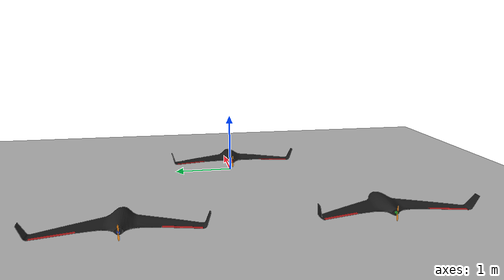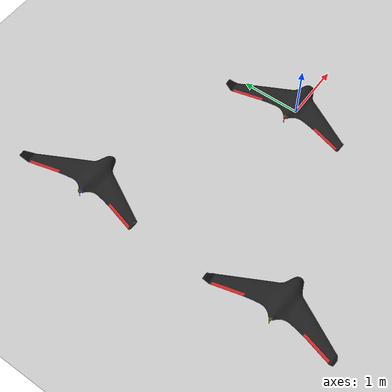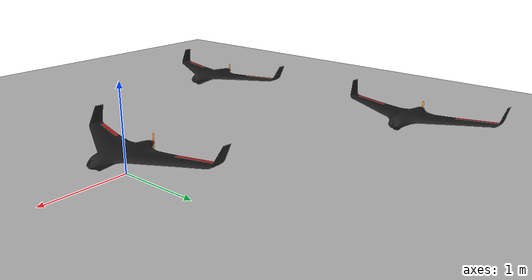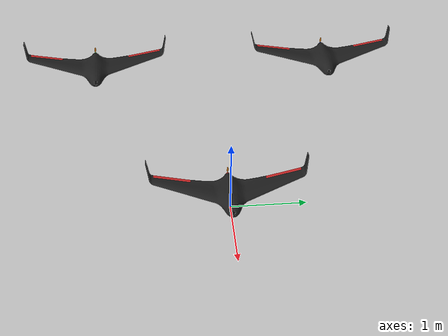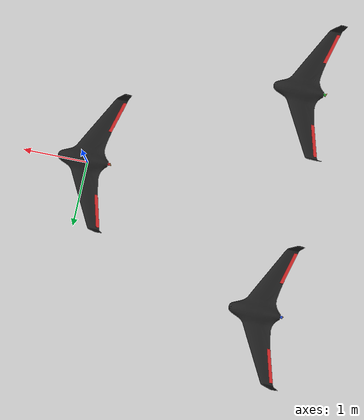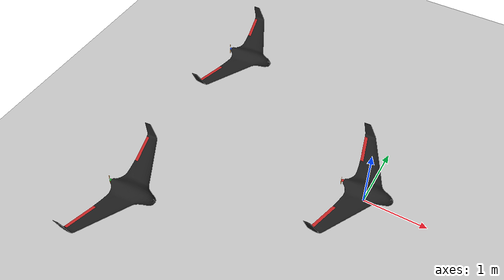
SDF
<?xml version="1.0"?>
<sdf version="1.5">
  <world name="default">
    <physics type="ode">
      <ode>
        <solver>
          <type>quick</type>
          <iters>100</iters>
          <sor>1.0</sor>
        </solver>
        <constraints>
          <cfm>0.0</cfm>
          <erp>0.9</erp>
          <contact_max_correcting_vel>0.1</contact_max_correcting_vel>
          <contact_surface_layer>0.0</contact_surface_layer>
        </constraints>
      </ode>
      <real_time_update_rate>1000</real_time_update_rate>
      <max_step_size>0.0010</max_step_size>
    </physics>

    <scene>
      <sky>
        <clouds>
          <speed>12</speed>
        </clouds>
      </sky>
      <ambient>0.4 0.4 0.4 1</ambient>
      <background>0.25 0.25 0.25 1</background>
    </scene>

    <model name="ground_plane">
      <static>true</static>
      <link name="link">
        <collision name="collision">
          <geometry>
            <plane>
              <normal>0 0 1</normal>
              <size>5000 5000</size>
            </plane>
          </geometry>
          <surface>
            <friction>
              <ode>
                <mu>1</mu>
                <mu2>1</mu2>
              </ode>
            </friction>
          </surface>
        </collision>
        <visual name="runway">
	<pose>000 0 0.005 0 0 0</pose>
          <cast_shadows>false</cast_shadows>
          <geometry>
            <plane>
              <normal>0 0 1</normal>
              <size>1829 45</size>
            </plane>
          </geometry>
          <material>
            <script>
              <uri>file://media/materials/scripts/gazebo.material</uri>
              <name>Gazebo/Runway</name>
            </script>
          </material>
        </visual>

        <visual name="grass">
          <pose>0 0 -0.1 0 0 0</pose>
          <cast_shadows>false</cast_shadows>
          <geometry>
            <plane>
              <normal>0 0 1</normal>
              <size>5000 5000</size>
            </plane>
          </geometry>
          <material>
            <script>
              <uri>file://media/materials/scripts/gazebo.material</uri>
              <name>Gazebo/Grass</name>
            </script>
          </material>
        </visual>

      </link>
    </model>

    <include>
      <uri>model://sun</uri>
    </include>

    <model name="SkywalkerX8_Red">
      <include>
        <uri>model://skywalker_x8_red</uri>
      </include>
    	<pose> 0 0 0 0 0 0</pose>
    </model>

    <model name="SkywalkerX8_Green">
      <include>
        <uri>model://skywalker_x8_green</uri>
      </include>
      <pose> -3 -1.732 0 0 0 0</pose>
    </model>

    <model name="SkywalkerX8_Blue">
      <include>
        <uri>model://skywalker_x8_blue</uri>
      </include>
      <pose> -3 1.732 0 0 0 0</pose>
    </model>

  </world>
</sdf>

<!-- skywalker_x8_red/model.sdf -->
<sdf version="1.6">
  <model name="skywalker_x8_red">
    <pose>0 0 0.246 0 0 0</pose>

<!-- Converter by Ahfaz IGNITION Model sdf 1.7 to this one  -->

<!--######## RED #############  -->

<!--######## Adding Camera #############  -->

    <link name="cam_link">
      <pose>0 0 0 0 0 0 </pose>
      <inertial>
        <mass>0.01</mass>
        <inertia>
          <ixx>0.0001</ixx>
          <iyy>0.0001</iyy>
          <izz>0.0001</izz>
        </inertia>
      </inertial>
      <sensor name="chase_cam_wide" type="camera">
        <pose>-10 0 12 -1.5708 1 0</pose>
        <camera>
          <horizontal_fov>1.5</horizontal_fov>
          <image>
            <width>1920</width>
            <height>1080</height>
          </image>
          <clip>
            <near>0.1</near>
            <far>1000</far>
          </clip>
        </camera>
        <always_on>1</always_on>
        <update_rate>60</update_rate>
        <visualize>false</visualize>
      </sensor>
    </link>

    <joint name="virtual_camera_mount" type="fixed">
      <child>cam_link</child>
      <parent>base_link</parent>
      <axis>
        <xyz>0 0 1</xyz>
        <limit>
          <upper>0</upper>
          <lower>0</lower>
        </limit>
      </axis>
    </joint>

<!--######## base link #############  -->
    <link name='base_link'>
      <pose>0 0 0 0 0 0</pose>
      <inertial>
        <pose>0 0 0 0 0 0</pose>
        <mass>4.5</mass>
        <inertia>
          <ixx>0.45</ixx>
          <ixy>0</ixy>
          <ixz>0.06</ixz>
          <iyy>0.325</iyy>
          <iyz>0</iyz>
          <izz>0.75</izz>
        </inertia>
      </inertial>
      <collision name='base_link_collision'>
        <pose>0 0 -0.07 0 0 0</pose>
        <geometry>
          <box>
            <size>0.50 0.5 0.2</size>
          </box>
        </geometry>
      </collision>
      <visual name='base_link_visual'>
        <geometry>
          <mesh>
            <uri>model://skywalker_x8/meshes/x8_wing.dae</uri>
          </mesh>
        </geometry>
        <material>
          <diffuse>1.0 0.0 0.0</diffuse>
          <specular>1.0 1.0 1.0</specular>
          <script>
            <name>Gazebo/Black</name>
            <uri>file://media/materials/scripts/gazebo.material</uri>
          </script>
        </material>
      </visual>
      <visual name='motor'>
        <pose>-0.361 0 0.0 0 1.57 0</pose>
        <geometry>
          <cylinder>
            <length>0.035</length>
            <radius>0.02</radius>
          </cylinder>
        </geometry>
        <material>
          <diffuse>1 1 1</diffuse>
          <specular>1 1 1</specular>
          <script>
            <name>Gazebo/Red</name>
            <uri>file://media/materials/scripts/gazebo.material</uri>
          </script>
        </material>
      </visual>
      <!-- save for debugging use -->
    </link>

<!--######## Rotor #############  -->
    <link name='rotor_pusher'>
      <pose>-0.385 0 0.0 0 1.57 0</pose>
      <inertial>
        <mass>0.025</mass>
        <inertia>
          <ixx>9.75e-06</ixx>
          <ixy>0</ixy>
          <ixz>0</ixz>
          <iyy>0.000166704</iyy>
          <iyz>0</iyz>
          <izz>0.000167604</izz>
        </inertia>
      </inertial>
      <collision name='collision'>
        <pose>0.0 0 0 0 0 0</pose>
        <geometry>
          <cylinder>
            <length>0.005</length>
            <radius>0.065</radius>
          </cylinder>
        </geometry>
      </collision>
      <visual name='visual'>
        <pose>0 0 0 0 0 0</pose>
        <geometry>
          <mesh>
            <scale>0.8 0.8 0.8</scale>
            <uri>model://skywalker_x8/meshes/iris_prop_ccw.dae</uri>
          </mesh>
        </geometry>
        <material>
          <diffuse>1.0 1.0 1.0</diffuse>
          <specular>1.0 1.0 1.0</specular>
          <script>
            <name>Gazebo/Orange</name>
            <uri>file://media/materials/scripts/gazebo.material</uri>
          </script>
        </material>
      </visual>
    </link>

    <joint name='rotor_pusher_joint' type='revolute'>
      <child>rotor_pusher</child>
      <parent>base_link</parent>
      <axis>
        <xyz>1 0 0</xyz>
        <limit>
          <lower>-1e+16</lower>
          <upper>1e+16</upper>
        </limit>
        <dynamics>
          <damping>0.002</damping>
        </dynamics>
        <use_parent_model_frame>1</use_parent_model_frame>
      </axis>
    </joint>

  <!--######## left_elevon #############  -->

    <link name="left_elevon">
      <inertial>
        <mass>0.1</mass>
        <inertia>
          <ixx>0.000102319</ixx>
          <ixy>0</ixy>
          <iyy>0.00334417</iyy>
          <ixz>0</ixz>
          <iyz>0</iyz>
          <izz>0.003446072</izz>
        </inertia>
        <pose>-0.30 0.75 -0.005 0 0 0</pose>
      </inertial>
      <visual name='left_elevon_visual'>
        <geometry>
          <mesh>
            <uri>model://skywalker_x8/meshes/x8_elevon_left.dae</uri>
          </mesh>
        </geometry>
        <material>
          <diffuse>1.0 1.0 1.0</diffuse>
          <specular>1.0 1.0 1.0</specular>
          <script>
            <name>Gazebo/Red</name>
            <uri>file://media/materials/scripts/gazebo.material</uri>
          </script>
        </material>
      </visual>
    </link>

        <!-- Joint range -30/+30 deg. -->
    <joint name='left_elevon_joint' type='revolute'>
      <parent>base_link</parent>
      <child>left_elevon</child>
      <pose>-0.27 0.6 -0.005 0 0 0.265</pose>
      <axis>
        <xyz>0 1 0</xyz>
        <limit>
          <lower>-0.53</lower>
          <upper>0.53</upper>
        </limit>
        <dynamics>
          <damping>0.1</damping>
        </dynamics>
      </axis>
    </joint>

 <!--######## right_elevon ###########  -->

    <link name="right_elevon">
      <inertial>
        <mass>0.1</mass>
        <inertia>
          <ixx>0.000102319</ixx>
          <ixy>0</ixy>
          <iyy>0.00334417</iyy>
          <ixz>0</ixz>
          <iyz>0</iyz>
          <izz>0.003446072</izz>
        </inertia>
        <pose>-0.30 -0.75 -0.005 0 0 0</pose>
      </inertial>
      <visual name='right_elevon_visual'>
        <geometry>
          <mesh>
            <uri>model://skywalker_x8/meshes/x8_elevon_right.dae</uri>
          </mesh>
        </geometry>
        <material>
          <diffuse>1.0 1.0 1.0</diffuse>
          <specular>1.0 1.0 1.0</specular>
          <script>
            <name>Gazebo/Red</name>
            <uri>file://media/materials/scripts/gazebo.material</uri>
          </script>
        </material>
      </visual>
    </link>

    <!-- Joint range -30/+30 deg. -->
    <joint name='right_elevon_joint' type='revolute'>
      <parent>base_link</parent>
      <child>right_elevon</child>
      <pose>-0.27 -0.6 -0.005 0 0 -0.265</pose>
      <axis>
        <xyz>0 1 0</xyz>
        <limit>
          <lower>-0.53</lower>
          <upper>0.53</upper>
        </limit>
        <dynamics>
          <damping>0.1</damping>
        </dynamics>
      </axis>
    </joint>

<!-- ############ IMU Sensors ###########-->

    <link name='imu_link'>
      <inertial>
        <pose>0 0 0 0 0 0</pose>
        <mass>0.15</mass>
        <inertia>
          <ixx>0.00001</ixx>
          <ixy>0</ixy>
          <ixz>0</ixz>
          <iyy>0.00002</iyy>
          <iyz>0</iyz>
          <izz>0.00002</izz>
        </inertia>
      </inertial>

      <sensor name="imu_sensor" type="imu">
        <pose>0 0 0 3.141593 0 0</pose>
        <always_on>1</always_on>
        <update_rate>1000.0</update_rate>
        <visualize>1</visualize>

        <!--  added from here-->
        <topic>__default_topic__</topic>

        <plugin name='imu_plugin' filename='libgazebo_ros_imu_sensor.so'>
          <topicName>imu</topicName>
          <bodyName>imu_link</bodyName>
          <updateRateHZ>10.0</updateRateHZ>
          <gaussianNoise>0.0</gaussianNoise>
          <xyzOffset>0 0 0</xyzOffset>
          <rpyOffset>0 0 0</rpyOffset>
          <frameName>imu_link</frameName>
          <initialOrientationAsReference>0</initialOrientationAsReference>
        </plugin>

        <!--  added to here -->

      </sensor>
    </link>

    <joint name='skywalker_x8/imu_joint' type='revolute'>
      <child>imu_link</child>
      <parent>base_link</parent>
      <axis>
        <xyz>0 0 1</xyz>
        <limit>
          <lower>0</lower>
          <upper>0</upper>
          <effort>0</effort>
          <velocity>0</velocity>
        </limit>
        <dynamics>
          <damping>1.0</damping>
        </dynamics>
        <use_parent_model_frame>1</use_parent_model_frame>
      </axis>
      <physics>
        <ode>
          <implicit_spring_damper>1</implicit_spring_damper>
        </ode>
      </physics>
    </joint>

<!-- ################## PLUGIN ###################### -->

     <!-- lift drag BODY -->

 <plugin name='x8_elevonleftbody_lift' filename='libLiftDragPlugin.so'>
      <a0>0.13</a0>
      <cla>3.7</cla>
      <cda>0.06417112299</cda>
      <cma>-1.8</cma>
      <alpha_stall>0.3391428111</alpha_stall>
      <cla_stall>-3.85</cla_stall>
      <cda_stall>-0.9233984055</cda_stall>
      <cma_stall>0</cma_stall>
      <cp>0.01 0 0</cp>
      <area>0.80</area>
      <air_density>1.2041</air_density>
      <forward>1 0 0</forward>
      <upward>0 0 1</upward>
      <link_name>base_link</link_name>
    </plugin>

         <!-- lift drag left elevon -->

    <plugin name='x8_elevonleft_lift' filename='libLiftDragPlugin.so'>

      <a0>0.15</a0>
      <cla>6.8</cla>
      <cda>0.06417112299</cda>
      <cma>-1.8</cma>
      <alpha_stall>0.6391428111</alpha_stall>
      <cla_stall>-3.85</cla_stall>
      <cda_stall>-0.9233984055</cda_stall>
      <cma_stall>0</cma_stall>
      <cp>-0.30 0.75 -0.005</cp>
      <area>0.10</area>
      <air_density>1.2041</air_density>
      <forward>1 0 0</forward>
      <upward>0 0 1</upward>
      <link_name>left_elevon</link_name>
    </plugin>

        <!-- lift drag right elevon -->

<plugin name='x8_elevonright_lift' filename='libLiftDragPlugin.so'>
      <a0>0.15</a0>
      <cla>6.8</cla>
      <cda>0.06417112299</cda>
      <cma>-1.8</cma>
      <alpha_stall>0.6391428111</alpha_stall>
      <cla_stall>-3.85</cla_stall>
      <cda_stall>-0.9233984055</cda_stall>
      <cma_stall>0</cma_stall>
      <cp>-0.30 -0.75 -0.005</cp>
      <area>0.10</area>
      <air_density>1.2041</air_density>
      <forward>1 0 0</forward>
      <upward>0 0 1</upward>
      <link_name>right_elevon</link_name>
    </plugin>

       <!-- lift drag  propeller1 -->

 <plugin name='x8_propeller1_lift' filename='libLiftDragPlugin.so'>
  <a0>0.30</a0>
      <alpha_stall>1.4</alpha_stall>
      <cla>4.2500</cla>
      <cda>0.10</cda>
      <cma>0.00</cma>
      <cla_stall>-0.025</cla_stall>
      <cda_stall>0.0</cda_stall>
      <cma_stall>0.0</cma_stall>
      <area>0.02</area>
      <air_density>1.2041</air_density>
      <cp>0.074205 0 0</cp>
      <forward>0 1 0</forward>
      <upward>0 0 1</upward>
      <link_name>rotor_pusher</link_name>
    </plugin>

       <!-- lift drag  propeller2 -->
 <plugin name='x8_propeller2_lift' filename='libLiftDragPlugin.so'>

      <a0>0.30</a0>
      <alpha_stall>1.4</alpha_stall>
      <cla>4.2500</cla>
      <cda>0.10</cda>
      <cma>0.00</cma>
      <cla_stall>-0.025</cla_stall>
      <cda_stall>0.0</cda_stall>
      <cma_stall>0.0</cma_stall>
      <area>0.02</area>
      <air_density>1.2041</air_density>
      <cp>-0.074205 0 0</cp>
      <forward>0 -1 0</forward>
      <upward>0 0 1</upward>
      <link_name>rotor_pusher</link_name>
    </plugin>

    <!-- left_winglet lift-drag -->

    <plugin name='left_winglet_lift' filename='libLiftDragPlugin.so'>
      <a0>0.0</a0>
      <cla>4.752798721</cla>
      <cda>0.6417112299</cda>
      <cma>-1.8</cma>
      <alpha_stall>0.3391428111</alpha_stall>
      <cla_stall>-3.85</cla_stall>
      <cda_stall>-0.9233984055</cda_stall>
      <cma_stall>0</cma_stall>
      <cp>-0.36 1.04 0.08</cp>
      <area>0.12</area>
      <air_density>1.2041</air_density>
      <forward>1 0 0</forward>
      <upward>0 1 0</upward>
      <link_name>base_link</link_name>
    </plugin>

    <!-- right_winglet lift-drag -->

    <plugin name='right_winglet_lift' filename='libLiftDragPlugin.so'>
      <a0>0.0</a0>
      <cla>4.752798721</cla>
      <cda>0.6417112299</cda>
      <cma>-1.8</cma>
      <alpha_stall>0.3391428111</alpha_stall>
      <cla_stall>-3.85</cla_stall>
      <cda_stall>-0.9233984055</cda_stall>
      <cma_stall>0</cma_stall>
      <cp>-0.36 -1.04 0.08</cp>
      <area>0.12</area>
      <air_density>1.2041</air_density>
      <forward>1 0 0</forward>
      <upward>0 -1 0</upward>
      <link_name>base_link</link_name>
    </plugin>

             <!-- ARDUPILOT PLUGIN -->

   <plugin name="ArduPilotPlugin" filename="libArduPilotPlugin.so">
      <!-- Port settings -->
      <fdm_addr>127.0.0.1</fdm_addr>
      <fdm_port_in>9002</fdm_port_in>
      <fdm_port_out>9003</fdm_port_out>

      <connectionTimeoutMaxCount>5</connectionTimeoutMaxCount>
      <lock_step>1</lock_step>

      <modelXYZToAirplaneXForwardZDown>0 0 0 3.141593 0 0</modelXYZToAirplaneXForwardZDown>
      <gazeboXYZToNED>0 0 0 3.141593 0 0</gazeboXYZToNED>

      <!-- Sensors -->
      <imuName>imu_sensor</imuName>

      <control channel="0">
        <jointName>left_elevon_joint</jointName>
        <multiplier>1.048</multiplier>
        <offset>-0.5</offset>
        <servo_min>1100</servo_min>
        <servo_max>1900</servo_max>
        <type>POSITION</type>
        <p_gain>10.0</p_gain>
        <i_gain>0</i_gain>
        <d_gain>0</d_gain>
        <i_max>0</i_max>
        <i_min>0</i_min>
        <cmd_max>2.5</cmd_max>
        <cmd_min>-2.5</cmd_min>
      </control>

      <!--
          SERVO2_FUNCTION   78 (Elevon Right)
          SERVO2_MAX        1900
          SERVO2_MIN        1100
          SERVO2_REVERSED   0
          SERVO2_TRIM       1500
       -->
      <control channel="1">
        <jointName>right_elevon_joint</jointName>
        <multiplier>1.048</multiplier>
        <offset>-0.5</offset>
        <servo_min>1100</servo_min>
        <servo_max>1900</servo_max>
        <type>POSITION</type>
        <p_gain>10.0</p_gain>
        <i_gain>0</i_gain>
        <d_gain>0</d_gain>
        <i_max>0</i_max>
        <i_min>0</i_min>
        <cmd_max>2.5</cmd_max>
        <cmd_min>-2.5</cmd_min>
      </control>

      <!--
          incoming control command [0, 1]
          so offset it by 0 to get [0, 1]
          and divide max target by 1.
          offset = 0
          multiplier = 838 max rpm / 1 = 838
        -->

      <!--
          SERVO3_FUNCTION   70 (Throttle)
          SERVO3_MAX        2000
          SERVO3_MIN        1000
          SERVO3_REVERSED   0
          SERVO3_TRIM       1000
       -->
      <control channel="2">
        <jointName>rotor_pusher_joint</jointName>
        <multiplier>838</multiplier>
        <offset>0</offset>
        <servo_min>1200</servo_min>
        <servo_max>2000</servo_max>
        <type>VELOCITY</type>
        <p_gain>0.20</p_gain>
        <i_gain>0</i_gain>
        <d_gain>0</d_gain>
        <i_max>0</i_max>
        <i_min>0</i_min>
        <cmd_max>2.5</cmd_max>
        <cmd_min>-2.5</cmd_min>
      </control>
    </plugin>

  </model>
</sdf>

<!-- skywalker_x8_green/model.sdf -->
<sdf version="1.6">
  <model name="skywalker_x8_green">
    <pose>0 0 0.246 0 0 0</pose>

<!-- Converter by Ahfaz IGNITION Model sdf 1.7 to this one  -->

<!--######## GREEN #############  -->

<!--######## Adding Camera #############  -->

    <link name="cam_link">
      <pose>0 0 0 0 0 0 </pose>
      <inertial>
        <mass>0.01</mass>
        <inertia>
          <ixx>0.0001</ixx>
          <iyy>0.0001</iyy>
          <izz>0.0001</izz>
        </inertia>
      </inertial>
      <sensor name="chase_cam_wide" type="camera">
        <pose>0 -4 4 0 0.6 1.4</pose>
        <camera>
          <horizontal_fov>1.5</horizontal_fov>
          <image>
            <width>1920</width>
            <height>1080</height>
          </image>
          <clip>
            <near>0.1</near>
            <far>1000</far>
          </clip>
        </camera>
        <always_on>1</always_on>
        <update_rate>60</update_rate>
        <visualize>false</visualize>
      </sensor>
    </link>

    <joint name="virtual_camera_mount" type="fixed">
      <child>cam_link</child>
      <parent>base_link</parent>
      <axis>
        <xyz>0 0 1</xyz>
        <limit>
          <upper>0</upper>
          <lower>0</lower>
        </limit>
      </axis>
    </joint>

<!--######## base link #############  -->
    <link name='base_link'>
      <pose>0 0 0 0 0 0</pose>
      <inertial>
        <pose>0 0 0 0 0 0</pose>
        <mass>4.5</mass>
        <inertia>
          <ixx>0.45</ixx>
          <ixy>0</ixy>
          <ixz>0.06</ixz>
          <iyy>0.325</iyy>
          <iyz>0</iyz>
          <izz>0.75</izz>
        </inertia>
      </inertial>
      <collision name='base_link_collision'>
        <pose>0 0 -0.07 0 0 0</pose>
        <geometry>
          <box>
            <size>0.50 0.5 0.2</size>
          </box>
        </geometry>
      </collision>
      <visual name='base_link_visual'>
        <geometry>
          <mesh>
            <uri>model://skywalker_x8/meshes/x8_wing.dae</uri>
          </mesh>
        </geometry>
        <material>
          <diffuse>0.0 1.0 1.0</diffuse>
          <specular>1.0 1.0 1.0</specular>
          <script>
            <name>Gazebo/Black</name>
            <uri>file://media/materials/scripts/gazebo.material</uri>
          </script>
        </material>
      </visual>
      <visual name='motor'>
        <pose>-0.361 0 0.0 0 1.57 0</pose>
        <geometry>
          <cylinder>
            <length>0.035</length>
            <radius>0.02</radius>
          </cylinder>
        </geometry>
        <material>
          <diffuse>1 1 1</diffuse>
          <specular>1 1 1</specular>
          <script>
            <name>Gazebo/Green</name>
            <uri>file://media/materials/scripts/gazebo.material</uri>
          </script>
        </material>
      </visual>
      <!-- save for debugging use -->
    </link>

<!--######## Rotor #############  -->
    <link name='rotor_pusher'>
      <pose>-0.385 0 0.0 0 1.57 0</pose>
      <inertial>
        <mass>0.025</mass>
        <inertia>
          <ixx>9.75e-06</ixx>
          <ixy>0</ixy>
          <ixz>0</ixz>
          <iyy>0.000166704</iyy>
          <iyz>0</iyz>
          <izz>0.000167604</izz>
        </inertia>
      </inertial>
      <collision name='collision'>
        <pose>0.0 0 0 0 0 0</pose>
        <geometry>
          <cylinder>
            <length>0.005</length>
            <radius>0.065</radius>
          </cylinder>
        </geometry>
      </collision>
      <visual name='visual'>
        <pose>0 0 0 0 0 0</pose>
        <geometry>
          <mesh>
            <scale>0.8 0.8 0.8</scale>
            <uri>model://skywalker_x8/meshes/iris_prop_ccw.dae</uri>
          </mesh>
        </geometry>
        <material>
          <diffuse>1.0 1.0 1.0</diffuse>
          <specular>1.0 1.0 1.0</specular>
          <script>
            <name>Gazebo/Orange</name>
            <uri>file://media/materials/scripts/gazebo.material</uri>
          </script>
        </material>
      </visual>
    </link>

    <joint name='rotor_pusher_joint' type='revolute'>
      <child>rotor_pusher</child>
      <parent>base_link</parent>
      <axis>
        <xyz>1 0 0</xyz>
        <limit>
          <lower>-1e+16</lower>
          <upper>1e+16</upper>
        </limit>
        <dynamics>
          <damping>0.002</damping>
        </dynamics>
        <use_parent_model_frame>1</use_parent_model_frame>
      </axis>
    </joint>

  <!--######## left_elevon #############  -->

    <link name="left_elevon">
      <inertial>
        <mass>0.1</mass>
        <inertia>
          <ixx>0.000102319</ixx>
          <ixy>0</ixy>
          <iyy>0.00334417</iyy>
          <ixz>0</ixz>
          <iyz>0</iyz>
          <izz>0.003446072</izz>
        </inertia>
        <pose>-0.30 0.75 -0.005 0 0 0</pose>
      </inertial>
      <visual name='left_elevon_visual'>
        <geometry>
          <mesh>
            <uri>model://skywalker_x8/meshes/x8_elevon_left.dae</uri>
          </mesh>
        </geometry>
        <material>
          <diffuse>1.0 1.0 1.0</diffuse>
          <specular>1.0 1.0 1.0</specular>
          <script>
            <name>Gazebo/Red</name>
            <uri>file://media/materials/scripts/gazebo.material</uri>
          </script>
        </material>
      </visual>
    </link>

        <!-- Joint range -30/+30 deg. -->
    <joint name='left_elevon_joint' type='revolute'>
      <parent>base_link</parent>
      <child>left_elevon</child>
      <pose>-0.27 0.6 -0.005 0 0 0.265</pose>
      <axis>
        <xyz>0 1 0</xyz>
        <limit>
          <lower>-0.53</lower>
          <upper>0.53</upper>
        </limit>
        <dynamics>
          <damping>0.1</damping>
        </dynamics>
      </axis>
    </joint>

 <!--######## right_elevon ###########  -->

    <link name="right_elevon">
      <inertial>
        <mass>0.1</mass>
        <inertia>
          <ixx>0.000102319</ixx>
          <ixy>0</ixy>
          <iyy>0.00334417</iyy>
          <ixz>0</ixz>
          <iyz>0</iyz>
          <izz>0.003446072</izz>
        </inertia>
        <pose>-0.30 -0.75 -0.005 0 0 0</pose>
      </inertial>
      <visual name='right_elevon_visual'>
        <geometry>
          <mesh>
            <uri>model://skywalker_x8/meshes/x8_elevon_right.dae</uri>
          </mesh>
        </geometry>
        <material>
          <diffuse>1.0 1.0 1.0</diffuse>
          <specular>1.0 1.0 1.0</specular>
          <script>
            <name>Gazebo/Red</name>
            <uri>file://media/materials/scripts/gazebo.material</uri>
          </script>
        </material>
      </visual>
    </link>

    <!-- Joint range -30/+30 deg. -->
    <joint name='right_elevon_joint' type='revolute'>
      <parent>base_link</parent>
      <child>right_elevon</child>
      <pose>-0.27 -0.6 -0.005 0 0 -0.265</pose>
      <axis>
        <xyz>0 1 0</xyz>
        <limit>
          <lower>-0.53</lower>
          <upper>0.53</upper>
        </limit>
        <dynamics>
          <damping>0.1</damping>
        </dynamics>
      </axis>
    </joint>

<!-- ############ IMU Sensors ###########-->

    <link name='imu_link'>
      <inertial>
        <pose>0 0 0 0 0 0</pose>
        <mass>0.15</mass>
        <inertia>
          <ixx>0.00001</ixx>
          <ixy>0</ixy>
          <ixz>0</ixz>
          <iyy>0.00002</iyy>
          <iyz>0</iyz>
          <izz>0.00002</izz>
        </inertia>
      </inertial>

      <sensor name="imu_sensor" type="imu">
        <pose>0 0 0 3.141593 0 0</pose>
        <always_on>1</always_on>
        <update_rate>1000.0</update_rate>
        <visualize>1</visualize>

        <!--  added from here-->
        <topic>__default_topic__</topic>

        <plugin name='imu_plugin' filename='libgazebo_ros_imu_sensor.so'>
          <topicName>imu</topicName>
          <bodyName>imu_link</bodyName>
          <updateRateHZ>10.0</updateRateHZ>
          <gaussianNoise>0.0</gaussianNoise>
          <xyzOffset>0 0 0</xyzOffset>
          <rpyOffset>0 0 0</rpyOffset>
          <frameName>imu_link</frameName>
          <initialOrientationAsReference>0</initialOrientationAsReference>
        </plugin>

        <!--  added to here -->

      </sensor>
    </link>

    <joint name='skywalker_x8/imu_joint' type='revolute'>
      <child>imu_link</child>
      <parent>base_link</parent>
      <axis>
        <xyz>0 0 1</xyz>
        <limit>
          <lower>0</lower>
          <upper>0</upper>
          <effort>0</effort>
          <velocity>0</velocity>
        </limit>
        <dynamics>
          <damping>1.0</damping>
        </dynamics>
        <use_parent_model_frame>1</use_parent_model_frame>
      </axis>
      <physics>
        <ode>
          <implicit_spring_damper>1</implicit_spring_damper>
        </ode>
      </physics>
    </joint>

<!-- ################## PLUGIN ###################### -->

     <!-- lift drag BODY -->

 <plugin name='x8_elevonleftbody_lift' filename='libLiftDragPlugin.so'>
      <a0>0.13</a0>
      <cla>3.7</cla>
      <cda>0.06417112299</cda>
      <cma>-1.8</cma>
      <alpha_stall>0.3391428111</alpha_stall>
      <cla_stall>-3.85</cla_stall>
      <cda_stall>-0.9233984055</cda_stall>
      <cma_stall>0</cma_stall>
      <cp>0.01 0 0</cp>
      <area>0.80</area>
      <air_density>1.2041</air_density>
      <forward>1 0 0</forward>
      <upward>0 0 1</upward>
      <link_name>base_link</link_name>
    </plugin>

         <!-- lift drag left elevon -->

    <plugin name='x8_elevonleft_lift' filename='libLiftDragPlugin.so'>

      <a0>0.15</a0>
      <cla>6.8</cla>
      <cda>0.06417112299</cda>
      <cma>-1.8</cma>
      <alpha_stall>0.6391428111</alpha_stall>
      <cla_stall>-3.85</cla_stall>
      <cda_stall>-0.9233984055</cda_stall>
      <cma_stall>0</cma_stall>
      <cp>-0.30 0.75 -0.005</cp>
      <area>0.10</area>
      <air_density>1.2041</air_density>
      <forward>1 0 0</forward>
      <upward>0 0 1</upward>
      <link_name>left_elevon</link_name>
    </plugin>

        <!-- lift drag right elevon -->

<plugin name='x8_elevonright_lift' filename='libLiftDragPlugin.so'>
      <a0>0.15</a0>
      <cla>6.8</cla>
      <cda>0.06417112299</cda>
      <cma>-1.8</cma>
      <alpha_stall>0.6391428111</alpha_stall>
      <cla_stall>-3.85</cla_stall>
      <cda_stall>-0.9233984055</cda_stall>
      <cma_stall>0</cma_stall>
      <cp>-0.30 -0.75 -0.005</cp>
      <area>0.10</area>
      <air_density>1.2041</air_density>
      <forward>1 0 0</forward>
      <upward>0 0 1</upward>
      <link_name>right_elevon</link_name>
    </plugin>

       <!-- lift drag  propeller1 -->

 <plugin name='x8_propeller1_lift' filename='libLiftDragPlugin.so'>
  <a0>0.30</a0>
      <alpha_stall>1.4</alpha_stall>
      <cla>4.2500</cla>
      <cda>0.10</cda>
      <cma>0.00</cma>
      <cla_stall>-0.025</cla_stall>
      <cda_stall>0.0</cda_stall>
      <cma_stall>0.0</cma_stall>
      <area>0.02</area>
      <air_density>1.2041</air_density>
      <cp>0.074205 0 0</cp>
      <forward>0 1 0</forward>
      <upward>0 0 1</upward>
      <link_name>rotor_pusher</link_name>
    </plugin>

       <!-- lift drag  propeller2 -->
 <plugin name='x8_propeller2_lift' filename='libLiftDragPlugin.so'>

      <a0>0.30</a0>
      <alpha_stall>1.4</alpha_stall>
      <cla>4.2500</cla>
      <cda>0.10</cda>
      <cma>0.00</cma>
      <cla_stall>-0.025</cla_stall>
      <cda_stall>0.0</cda_stall>
      <cma_stall>0.0</cma_stall>
      <area>0.02</area>
      <air_density>1.2041</air_density>
      <cp>-0.074205 0 0</cp>
      <forward>0 -1 0</forward>
      <upward>0 0 1</upward>
      <link_name>rotor_pusher</link_name>
    </plugin>

    <!-- left_winglet lift-drag -->

    <plugin name='left_winglet_lift' filename='libLiftDragPlugin.so'>
      <a0>0.0</a0>
      <cla>4.752798721</cla>
      <cda>0.6417112299</cda>
      <cma>-1.8</cma>
      <alpha_stall>0.3391428111</alpha_stall>
      <cla_stall>-3.85</cla_stall>
      <cda_stall>-0.9233984055</cda_stall>
      <cma_stall>0</cma_stall>
      <cp>-0.36 1.04 0.08</cp>
      <area>0.12</area>
      <air_density>1.2041</air_density>
      <forward>1 0 0</forward>
      <upward>0 1 0</upward>
      <link_name>base_link</link_name>
    </plugin>

    <!-- right_winglet lift-drag -->

    <plugin name='right_winglet_lift' filename='libLiftDragPlugin.so'>
      <a0>0.0</a0>
      <cla>4.752798721</cla>
      <cda>0.6417112299</cda>
      <cma>-1.8</cma>
      <alpha_stall>0.3391428111</alpha_stall>
      <cla_stall>-3.85</cla_stall>
      <cda_stall>-0.9233984055</cda_stall>
      <cma_stall>0</cma_stall>
      <cp>-0.36 -1.04 0.08</cp>
      <area>0.12</area>
      <air_density>1.2041</air_density>
      <forward>1 0 0</forward>
      <upward>0 -1 0</upward>
      <link_name>base_link</link_name>
    </plugin>

             <!-- ARDUPILOT PLUGIN -->

   <plugin name="ArduPilotPlugin" filename="libArduPilotPlugin.so">
      <!-- Port settings -->
      <fdm_addr>127.0.0.1</fdm_addr>
      <fdm_port_in>9012</fdm_port_in>
      <fdm_port_out>9013</fdm_port_out>

      <connectionTimeoutMaxCount>5</connectionTimeoutMaxCount>
      <lock_step>1</lock_step>

      <modelXYZToAirplaneXForwardZDown>0 0 0 3.141593 0 0</modelXYZToAirplaneXForwardZDown>
      <gazeboXYZToNED>0 0 0 3.141593 0 0</gazeboXYZToNED>

      <!-- Sensors -->
      <imuName>imu_sensor</imuName>

      <control channel="0">
        <jointName>left_elevon_joint</jointName>
        <multiplier>1.048</multiplier>
        <offset>-0.5</offset>
        <servo_min>1100</servo_min>
        <servo_max>1900</servo_max>
        <type>POSITION</type>
        <p_gain>10.0</p_gain>
        <i_gain>0</i_gain>
        <d_gain>0</d_gain>
        <i_max>0</i_max>
        <i_min>0</i_min>
        <cmd_max>2.5</cmd_max>
        <cmd_min>-2.5</cmd_min>
      </control>

      <!--
          SERVO2_FUNCTION   78 (Elevon Right)
          SERVO2_MAX        1900
          SERVO2_MIN        1100
          SERVO2_REVERSED   0
          SERVO2_TRIM       1500
       -->
      <control channel="1">
        <jointName>right_elevon_joint</jointName>
        <multiplier>1.048</multiplier>
        <offset>-0.5</offset>
        <servo_min>1100</servo_min>
        <servo_max>1900</servo_max>
        <type>POSITION</type>
        <p_gain>10.0</p_gain>
        <i_gain>0</i_gain>
        <d_gain>0</d_gain>
        <i_max>0</i_max>
        <i_min>0</i_min>
        <cmd_max>2.5</cmd_max>
        <cmd_min>-2.5</cmd_min>
      </control>

      <!--
          incoming control command [0, 1]
          so offset it by 0 to get [0, 1]
          and divide max target by 1.
          offset = 0
          multiplier = 838 max rpm / 1 = 838
        -->

      <!--
          SERVO3_FUNCTION   70 (Throttle)
          SERVO3_MAX        2000
          SERVO3_MIN        1000
          SERVO3_REVERSED   0
          SERVO3_TRIM       1000
       -->
      <control channel="2">
        <jointName>rotor_pusher_joint</jointName>
        <multiplier>838</multiplier>
        <offset>0</offset>
        <servo_min>1200</servo_min>
        <servo_max>2000</servo_max>
        <type>VELOCITY</type>
        <p_gain>0.20</p_gain>
        <i_gain>0</i_gain>
        <d_gain>0</d_gain>
        <i_max>0</i_max>
        <i_min>0</i_min>
        <cmd_max>2.5</cmd_max>
        <cmd_min>-2.5</cmd_min>
      </control>
    </plugin>

  </model>
</sdf>

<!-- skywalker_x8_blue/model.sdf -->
<sdf version="1.6">
  <model name="skywalker_x8_blue">
    <pose>0 0 0.246 0 0 0</pose>

<!-- Converter by Ahfaz IGNITION Model sdf 1.7 to this one  -->

<!--######## BLUE #############  -->

<!--######## Adding Camera #############  -->

    <link name="cam_link">
      <pose>0 0 0 0 0 0 </pose>
      <inertial>
        <mass>0.01</mass>
        <inertia>
          <ixx>0.0001</ixx>
          <iyy>0.0001</iyy>
          <izz>0.0001</izz>
        </inertia>
      </inertial>
      <sensor name="chase_cam_wide" type="camera">
        <pose>0 4 4 0 0.6 -1.4</pose>
        <camera>
          <horizontal_fov>1.5</horizontal_fov>
          <image>
            <width>1920</width>
            <height>1080</height>
          </image>
          <clip>
            <near>0.1</near>
            <far>1000</far>
          </clip>
        </camera>
        <always_on>1</always_on>
        <update_rate>60</update_rate>
        <visualize>false</visualize>
      </sensor>
    </link>

    <joint name="virtual_camera_mount" type="fixed">
      <child>cam_link</child>
      <parent>base_link</parent>
      <axis>
        <xyz>0 0 1</xyz>
        <limit>
          <upper>0</upper>
          <lower>0</lower>
        </limit>
      </axis>
    </joint>

<!--######## base link #############  -->
    <link name='base_link'>
      <pose>0 0 0 0 0 0</pose>
      <inertial>
        <pose>0 0 0 0 0 0</pose>
        <mass>4.5</mass>
        <inertia>
          <ixx>0.45</ixx>
          <ixy>0</ixy>
          <ixz>0.06</ixz>
          <iyy>0.325</iyy>
          <iyz>0</iyz>
          <izz>0.75</izz>
        </inertia>
      </inertial>
      <collision name='base_link_collision'>
        <pose>0 0 -0.07 0 0 0</pose>
        <geometry>
          <box>
            <size>0.50 0.5 0.2</size>
          </box>
        </geometry>
      </collision>
      <visual name='base_link_visual'>
        <geometry>
          <mesh>
            <uri>model://skywalker_x8/meshes/x8_wing.dae</uri>
          </mesh>
        </geometry>
        <material>
          <diffuse>0.0 0.0 1.0</diffuse>
          <specular>1.0 1.0 1.0</specular>
          <script>
            <name>Gazebo/Black</name>
            <uri>file://media/materials/scripts/gazebo.material</uri>
          </script>
        </material>
      </visual>
      <visual name='motor'>
        <pose>-0.361 0 0.0 0 1.57 0</pose>
        <geometry>
          <cylinder>
            <length>0.035</length>
            <radius>0.02</radius>
          </cylinder>
        </geometry>
        <material>
          <diffuse>1 1 1</diffuse>
          <specular>1 1 1</specular>
          <script>
            <name>Gazebo/Blue</name>
            <uri>file://media/materials/scripts/gazebo.material</uri>
          </script>
        </material>
      </visual>
      <!-- save for debugging use -->
    </link>

<!--######## Rotor #############  -->
    <link name='rotor_pusher'>
      <pose>-0.385 0 0.0 0 1.57 0</pose>
      <inertial>
        <mass>0.025</mass>
        <inertia>
          <ixx>9.75e-06</ixx>
          <ixy>0</ixy>
          <ixz>0</ixz>
          <iyy>0.000166704</iyy>
          <iyz>0</iyz>
          <izz>0.000167604</izz>
        </inertia>
      </inertial>
      <collision name='collision'>
        <pose>0.0 0 0 0 0 0</pose>
        <geometry>
          <cylinder>
            <length>0.005</length>
            <radius>0.065</radius>
          </cylinder>
        </geometry>
      </collision>
      <visual name='visual'>
        <pose>0 0 0 0 0 0</pose>
        <geometry>
          <mesh>
            <scale>0.8 0.8 0.8</scale>
            <uri>model://skywalker_x8/meshes/iris_prop_ccw.dae</uri>
          </mesh>
        </geometry>
        <material>
          <diffuse>1.0 1.0 1.0</diffuse>
          <specular>1.0 1.0 1.0</specular>
          <script>
            <name>Gazebo/Orange</name>
            <uri>file://media/materials/scripts/gazebo.material</uri>
          </script>
        </material>
      </visual>
    </link>

    <joint name='rotor_pusher_joint' type='revolute'>
      <child>rotor_pusher</child>
      <parent>base_link</parent>
      <axis>
        <xyz>1 0 0</xyz>
        <limit>
          <lower>-1e+16</lower>
          <upper>1e+16</upper>
        </limit>
        <dynamics>
          <damping>0.002</damping>
        </dynamics>
        <use_parent_model_frame>1</use_parent_model_frame>
      </axis>
    </joint>

  <!--######## left_elevon #############  -->

    <link name="left_elevon">
      <inertial>
        <mass>0.1</mass>
        <inertia>
          <ixx>0.000102319</ixx>
          <ixy>0</ixy>
          <iyy>0.00334417</iyy>
          <ixz>0</ixz>
          <iyz>0</iyz>
          <izz>0.003446072</izz>
        </inertia>
        <pose>-0.30 0.75 -0.005 0 0 0</pose>
      </inertial>
      <visual name='left_elevon_visual'>
        <geometry>
          <mesh>
            <uri>model://skywalker_x8/meshes/x8_elevon_left.dae</uri>
          </mesh>
        </geometry>
        <material>
          <diffuse>1.0 1.0 1.0</diffuse>
          <specular>1.0 1.0 1.0</specular>
          <script>
            <name>Gazebo/Red</name>
            <uri>file://media/materials/scripts/gazebo.material</uri>
          </script>
        </material>
      </visual>
    </link>

        <!-- Joint range -30/+30 deg. -->
    <joint name='left_elevon_joint' type='revolute'>
      <parent>base_link</parent>
      <child>left_elevon</child>
      <pose>-0.27 0.6 -0.005 0 0 0.265</pose>
      <axis>
        <xyz>0 1 0</xyz>
        <limit>
          <lower>-0.53</lower>
          <upper>0.53</upper>
        </limit>
        <dynamics>
          <damping>0.1</damping>
        </dynamics>
      </axis>
    </joint>

 <!--######## right_elevon ###########  -->

    <link name="right_elevon">
      <inertial>
        <mass>0.1</mass>
        <inertia>
          <ixx>0.000102319</ixx>
          <ixy>0</ixy>
          <iyy>0.00334417</iyy>
          <ixz>0</ixz>
          <iyz>0</iyz>
          <izz>0.003446072</izz>
        </inertia>
        <pose>-0.30 -0.75 -0.005 0 0 0</pose>
      </inertial>
      <visual name='right_elevon_visual'>
        <geometry>
          <mesh>
            <uri>model://skywalker_x8/meshes/x8_elevon_right.dae</uri>
          </mesh>
        </geometry>
        <material>
          <diffuse>1.0 1.0 1.0</diffuse>
          <specular>1.0 1.0 1.0</specular>
          <script>
            <name>Gazebo/Red</name>
            <uri>file://media/materials/scripts/gazebo.material</uri>
          </script>
        </material>
      </visual>
    </link>

    <!-- Joint range -30/+30 deg. -->
    <joint name='right_elevon_joint' type='revolute'>
      <parent>base_link</parent>
      <child>right_elevon</child>
      <pose>-0.27 -0.6 -0.005 0 0 -0.265</pose>
      <axis>
        <xyz>0 1 0</xyz>
        <limit>
          <lower>-0.53</lower>
          <upper>0.53</upper>
        </limit>
        <dynamics>
          <damping>0.1</damping>
        </dynamics>
      </axis>
    </joint>

<!-- ############ IMU Sensors ###########-->

    <link name='imu_link'>
      <inertial>
        <pose>0 0 0 0 0 0</pose>
        <mass>0.15</mass>
        <inertia>
          <ixx>0.00001</ixx>
          <ixy>0</ixy>
          <ixz>0</ixz>
          <iyy>0.00002</iyy>
          <iyz>0</iyz>
          <izz>0.00002</izz>
        </inertia>
      </inertial>

      <sensor name="imu_sensor" type="imu">
        <pose>0 0 0 3.141593 0 0</pose>
        <always_on>1</always_on>
        <update_rate>1000.0</update_rate>
        <visualize>1</visualize>

        <!--  added from here-->
        <topic>__default_topic__</topic>

        <plugin name='imu_plugin' filename='libgazebo_ros_imu_sensor.so'>
          <topicName>imu</topicName>
          <bodyName>imu_link</bodyName>
          <updateRateHZ>10.0</updateRateHZ>
          <gaussianNoise>0.0</gaussianNoise>
          <xyzOffset>0 0 0</xyzOffset>
          <rpyOffset>0 0 0</rpyOffset>
          <frameName>imu_link</frameName>
          <initialOrientationAsReference>0</initialOrientationAsReference>
        </plugin>

        <!--  added to here -->

      </sensor>
    </link>

    <joint name='skywalker_x8/imu_joint' type='revolute'>
      <child>imu_link</child>
      <parent>base_link</parent>
      <axis>
        <xyz>0 0 1</xyz>
        <limit>
          <lower>0</lower>
          <upper>0</upper>
          <effort>0</effort>
          <velocity>0</velocity>
        </limit>
        <dynamics>
          <damping>1.0</damping>
        </dynamics>
        <use_parent_model_frame>1</use_parent_model_frame>
      </axis>
      <physics>
        <ode>
          <implicit_spring_damper>1</implicit_spring_damper>
        </ode>
      </physics>
    </joint>

<!-- ################## PLUGIN ###################### -->

     <!-- lift drag BODY -->

 <plugin name='x8_elevonleftbody_lift' filename='libLiftDragPlugin.so'>
      <a0>0.13</a0>
      <cla>3.7</cla>
      <cda>0.06417112299</cda>
      <cma>-1.8</cma>
      <alpha_stall>0.3391428111</alpha_stall>
      <cla_stall>-3.85</cla_stall>
      <cda_stall>-0.9233984055</cda_stall>
      <cma_stall>0</cma_stall>
      <cp>0.01 0 0</cp>
      <area>0.80</area>
      <air_density>1.2041</air_density>
      <forward>1 0 0</forward>
      <upward>0 0 1</upward>
      <link_name>base_link</link_name>
    </plugin>

         <!-- lift drag left elevon -->

    <plugin name='x8_elevonleft_lift' filename='libLiftDragPlugin.so'>

      <a0>0.15</a0>
      <cla>6.8</cla>
      <cda>0.06417112299</cda>
      <cma>-1.8</cma>
      <alpha_stall>0.6391428111</alpha_stall>
      <cla_stall>-3.85</cla_stall>
      <cda_stall>-0.9233984055</cda_stall>
      <cma_stall>0</cma_stall>
      <cp>-0.30 0.75 -0.005</cp>
      <area>0.10</area>
      <air_density>1.2041</air_density>
      <forward>1 0 0</forward>
      <upward>0 0 1</upward>
      <link_name>left_elevon</link_name>
    </plugin>

        <!-- lift drag right elevon -->

<plugin name='x8_elevonright_lift' filename='libLiftDragPlugin.so'>
      <a0>0.15</a0>
      <cla>6.8</cla>
      <cda>0.06417112299</cda>
      <cma>-1.8</cma>
      <alpha_stall>0.6391428111</alpha_stall>
      <cla_stall>-3.85</cla_stall>
      <cda_stall>-0.9233984055</cda_stall>
      <cma_stall>0</cma_stall>
      <cp>-0.30 -0.75 -0.005</cp>
      <area>0.10</area>
      <air_density>1.2041</air_density>
      <forward>1 0 0</forward>
      <upward>0 0 1</upward>
      <link_name>right_elevon</link_name>
    </plugin>

       <!-- lift drag  propeller1 -->

 <plugin name='x8_propeller1_lift' filename='libLiftDragPlugin.so'>
  <a0>0.30</a0>
      <alpha_stall>1.4</alpha_stall>
      <cla>4.2500</cla>
      <cda>0.10</cda>
      <cma>0.00</cma>
      <cla_stall>-0.025</cla_stall>
      <cda_stall>0.0</cda_stall>
      <cma_stall>0.0</cma_stall>
      <area>0.02</area>
      <air_density>1.2041</air_density>
      <cp>0.074205 0 0</cp>
      <forward>0 1 0</forward>
      <upward>0 0 1</upward>
      <link_name>rotor_pusher</link_name>
    </plugin>

       <!-- lift drag  propeller2 -->
 <plugin name='x8_propeller2_lift' filename='libLiftDragPlugin.so'>

      <a0>0.30</a0>
      <alpha_stall>1.4</alpha_stall>
      <cla>4.2500</cla>
      <cda>0.10</cda>
      <cma>0.00</cma>
      <cla_stall>-0.025</cla_stall>
      <cda_stall>0.0</cda_stall>
      <cma_stall>0.0</cma_stall>
      <area>0.02</area>
      <air_density>1.2041</air_density>
      <cp>-0.074205 0 0</cp>
      <forward>0 -1 0</forward>
      <upward>0 0 1</upward>
      <link_name>rotor_pusher</link_name>
    </plugin>

    <!-- left_winglet lift-drag -->

    <plugin name='left_winglet_lift' filename='libLiftDragPlugin.so'>
      <a0>0.0</a0>
      <cla>4.752798721</cla>
      <cda>0.6417112299</cda>
      <cma>-1.8</cma>
      <alpha_stall>0.3391428111</alpha_stall>
      <cla_stall>-3.85</cla_stall>
      <cda_stall>-0.9233984055</cda_stall>
      <cma_stall>0</cma_stall>
      <cp>-0.36 1.04 0.08</cp>
      <area>0.12</area>
      <air_density>1.2041</air_density>
      <forward>1 0 0</forward>
      <upward>0 1 0</upward>
      <link_name>base_link</link_name>
    </plugin>

    <!-- right_winglet lift-drag -->

    <plugin name='right_winglet_lift' filename='libLiftDragPlugin.so'>
      <a0>0.0</a0>
      <cla>4.752798721</cla>
      <cda>0.6417112299</cda>
      <cma>-1.8</cma>
      <alpha_stall>0.3391428111</alpha_stall>
      <cla_stall>-3.85</cla_stall>
      <cda_stall>-0.9233984055</cda_stall>
      <cma_stall>0</cma_stall>
      <cp>-0.36 -1.04 0.08</cp>
      <area>0.12</area>
      <air_density>1.2041</air_density>
      <forward>1 0 0</forward>
      <upward>0 -1 0</upward>
      <link_name>base_link</link_name>
    </plugin>

             <!-- ARDUPILOT PLUGIN -->

   <plugin name="ArduPilotPlugin" filename="libArduPilotPlugin.so">
      <!-- Port settings -->
      <fdm_addr>127.0.0.1</fdm_addr>
      <fdm_port_in>9022</fdm_port_in>
      <fdm_port_out>9023</fdm_port_out>

      <connectionTimeoutMaxCount>5</connectionTimeoutMaxCount>
      <lock_step>1</lock_step>

      <modelXYZToAirplaneXForwardZDown>0 0 0 3.141593 0 0</modelXYZToAirplaneXForwardZDown>
      <gazeboXYZToNED>0 0 0 3.141593 0 0</gazeboXYZToNED>

      <!-- Sensors -->
      <imuName>imu_sensor</imuName>

      <control channel="0">
        <jointName>left_elevon_joint</jointName>
        <multiplier>1.048</multiplier>
        <offset>-0.5</offset>
        <servo_min>1100</servo_min>
        <servo_max>1900</servo_max>
        <type>POSITION</type>
        <p_gain>10.0</p_gain>
        <i_gain>0</i_gain>
        <d_gain>0</d_gain>
        <i_max>0</i_max>
        <i_min>0</i_min>
        <cmd_max>2.5</cmd_max>
        <cmd_min>-2.5</cmd_min>
      </control>

      <!--
          SERVO2_FUNCTION   78 (Elevon Right)
          SERVO2_MAX        1900
          SERVO2_MIN        1100
          SERVO2_REVERSED   0
          SERVO2_TRIM       1500
       -->
      <control channel="1">
        <jointName>right_elevon_joint</jointName>
        <multiplier>1.048</multiplier>
        <offset>-0.5</offset>
        <servo_min>1100</servo_min>
        <servo_max>1900</servo_max>
        <type>POSITION</type>
        <p_gain>10.0</p_gain>
        <i_gain>0</i_gain>
        <d_gain>0</d_gain>
        <i_max>0</i_max>
        <i_min>0</i_min>
        <cmd_max>2.5</cmd_max>
        <cmd_min>-2.5</cmd_min>
      </control>

      <!--
          incoming control command [0, 1]
          so offset it by 0 to get [0, 1]
          and divide max target by 1.
          offset = 0
          multiplier = 838 max rpm / 1 = 838
        -->

      <!--
          SERVO3_FUNCTION   70 (Throttle)
          SERVO3_MAX        2000
          SERVO3_MIN        1000
          SERVO3_REVERSED   0
          SERVO3_TRIM       1000
       -->
      <control channel="2">
        <jointName>rotor_pusher_joint</jointName>
        <multiplier>838</multiplier>
        <offset>0</offset>
        <servo_min>1200</servo_min>
        <servo_max>2000</servo_max>
        <type>VELOCITY</type>
        <p_gain>0.20</p_gain>
        <i_gain>0</i_gain>
        <d_gain>0</d_gain>
        <i_max>0</i_max>
        <i_min>0</i_min>
        <cmd_max>2.5</cmd_max>
        <cmd_min>-2.5</cmd_min>
      </control>
    </plugin>

  </model>
</sdf>
